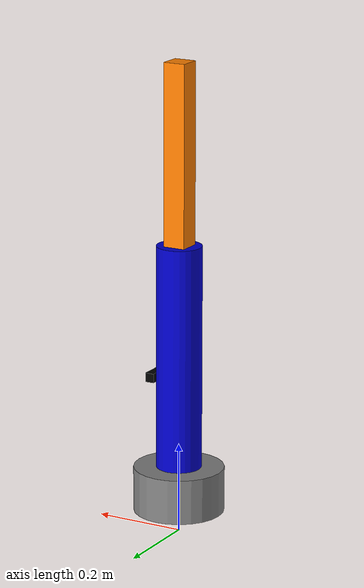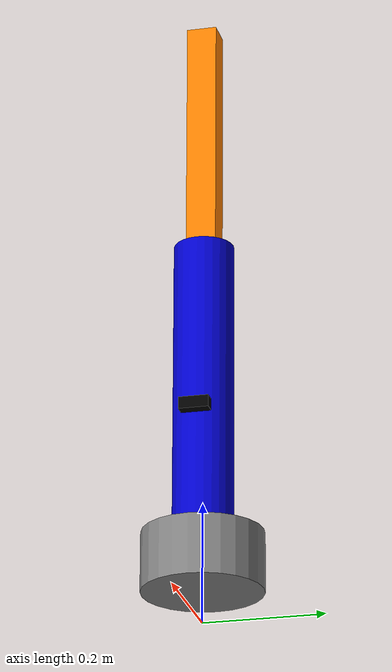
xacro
<?xml version="1.0"?>
<robot xmlns:xacro="http://www.ros.org/wiki/xacro" name="manipulator">

  <material name="blue"><color rgba="0 0 0.8 1"/></material>
  <material name="grey"><color rgba="0.5 0.5 0.5 1"/></material>
  <material name="orange"><color rgba="1.0 0.5 0 1"/></material>
  <material name="black"><color rgba="0 0 0 1"/></material>

  <xacro:macro name="cylinder_inertia" params="m r h">
    <inertial>
      <origin xyz="0 0 ${h/2}" rpy="0 0 0"/>
      <mass value="${m}"/>
      <inertia ixx="${(m/12) * (3*r*r + h*h)}" ixy="0.0" ixz="0.0"
               iyy="${(m/12) * (3*r*r + h*h)}" iyz="0.0"
               izz="${(m/2) * (r*r)}"/>
    </inertial>
  </xacro:macro>

  <xacro:macro name="box_inertia" params="m x y z">
    <inertial>
      <origin xyz="0 0 ${z/2}" rpy="0 0 0"/>
      <mass value="${m}"/>
      <inertia ixx="${(m/12) * (y*y + z*z)}" ixy="0.0" ixz="0.0"
               iyy="${(m/12) * (x*x + z*z)}" iyz="0.0"
               izz="${(m/12) * (x*x + y*y)}"/>
    </inertial>
  </xacro:macro>

  <link name="base_footprint"/>

  <joint name="base_joint" type="fixed">
    <parent link="base_footprint"/>
    <child link="base_link"/>
    <origin xyz="0 0 0.05" rpy="0 0 0"/>
  </joint>

  <link name="base_link">
    <visual>
      <origin xyz="0 0 0.05" rpy="0 0 0"/>
      <geometry><cylinder radius="0.1" length="0.1"/></geometry>
      <material name="grey"/>
    </visual>
    <collision>
      <origin xyz="0 0 0.05" rpy="0 0 0"/>
      <geometry><cylinder radius="0.1" length="0.1"/></geometry>
    </collision>
    <xacro:cylinder_inertia m="5.0" r="0.1" h="0.1"/>
  </link>

  <joint name="joint_1" type="revolute">
    <parent link="base_link"/>
    <child link="link_1"/>
    <origin xyz="0 0 0.1" rpy="0 0 0"/>
    <axis xyz="0 0 1"/>
    <limit lower="-3.14" upper="3.14" effort="100" velocity="1.0"/>
  </joint>

  <!-- UPDATED: length = 0.5 -->
  <link name="link_1">
    <visual>
      <origin xyz="0 0 0.25" rpy="0 0 0"/>
      <geometry><cylinder radius="0.05" length="0.5"/></geometry>
      <material name="blue"/>
    </visual>

    <collision>
      <origin xyz="0 0 0.25" rpy="0 0 0"/>
      <geometry><cylinder radius="0.05" length="0.5"/></geometry>
    </collision>

    <!-- UPDATED inertia for h = 0.5 -->
    <xacro:cylinder_inertia m="2.0" r="0.05" h="0.5"/>
  </link>

  <joint name="joint_2" type="revolute">
    <parent link="link_1"/>
    <child link="link_2"/>
    <!-- moved to top of new link_1 -->
    <origin xyz="0 0 0.5" rpy="0 0 0"/>
    <axis xyz="0 1 0"/>
    <limit lower="-1.57" upper="1.57" effort="100" velocity="1.0"/>
  </joint>

  <link name="link_2">
    <visual>
      <origin xyz="0 0 0.2" rpy="0 0 0"/>
      <geometry><box size="0.05 0.05 0.4"/></geometry>
      <material name="orange"/>
    </visual>
    <collision>
      <origin xyz="0 0 0.2" rpy="0 0 0"/>
      <geometry><box size="0.05 0.05 0.4"/></geometry>
    </collision>
    <xacro:box_inertia m="1.5" x="0.05" y="0.05" z="0.4"/>
  </link>

  <!-- UPDATED x = 0.06 -->
  <joint name="ultrasonic_joint" type="fixed">
    <parent link="link_1"/>
    <child link="ultrasonic_link"/>
    <origin xyz="0.06 0 0.2" rpy="0 0 0"/>
  </joint>

  <link name="ultrasonic_link">
    <visual>
      <geometry><box size="0.02 0.05 0.02"/></geometry>
      <material name="black"/>
    </visual>
    <collision>
      <geometry><box size="0.02 0.05 0.02"/></geometry>
    </collision>
    <xacro:box_inertia m="0.1" x="0.02" y="0.05" z="0.02"/>
  </link>

<gazebo reference="ultrasonic_link">
  <sensor name="ultrasonic_sensor" type="gpu_lidar"> <always_on>1</always_on>
    <update_rate>10</update_rate>
    <visualize>true</visualize>
    <topic>/arm/scan</topic> <lidar>
      <scan>
        <horizontal>
          <samples>5</samples>
          <resolution>1</resolution>
          <min_angle>-0.15</min_angle>
          <max_angle>0.15</max_angle>
        </horizontal>
      </scan>
      <range>
        <min>0.1</min> <max>2.0</max>
      </range>
    </lidar>
    <plugin filename="gz-sim-sensors-system" name="gz::sim::systems::Sensors">
      <render_engine>ogre2</render_engine>
    </plugin>
  </sensor>
</gazebo>

  <gazebo>
    <plugin filename="gz-sim-joint-state-publisher-system" name="gz::sim::systems::JointStatePublisher">
      <topic>joint_states</topic>
    </plugin>

    <plugin filename="gz-sim-joint-position-controller-system" name="gz::sim::systems::JointPositionController">
      <joint_name>joint_1</joint_name>
      <topic>/model/manipulator/joint/joint_1/cmd_pos</topic>
    </plugin>

    <plugin filename="gz-sim-joint-position-controller-system" name="gz::sim::systems::JointPositionController">
      <joint_name>joint_2</joint_name>
      <topic>/model/manipulator/joint/joint_2/cmd_pos</topic>
    </plugin>
  </gazebo>

</robot>
